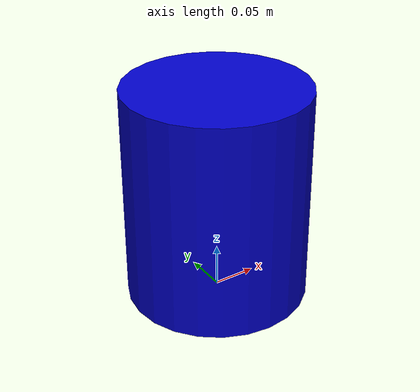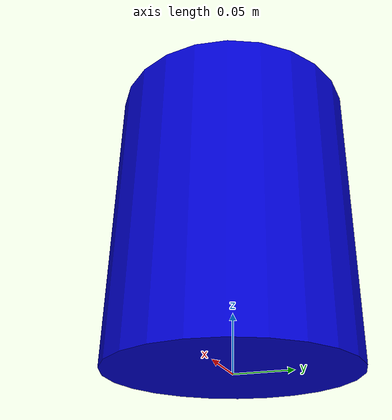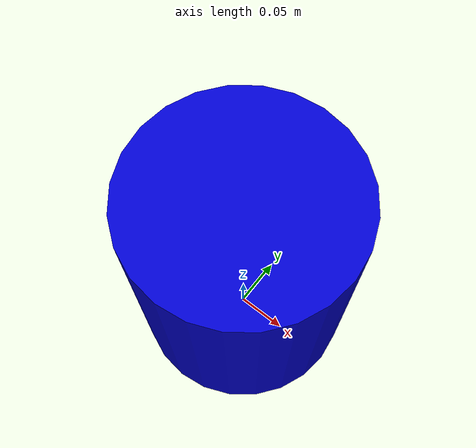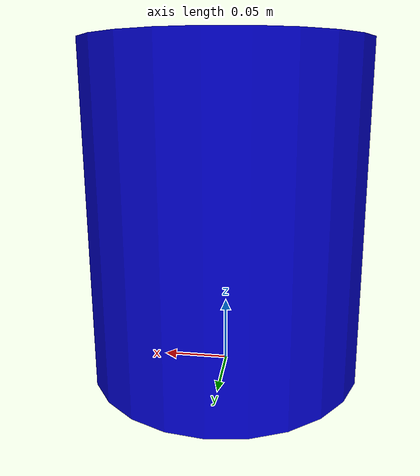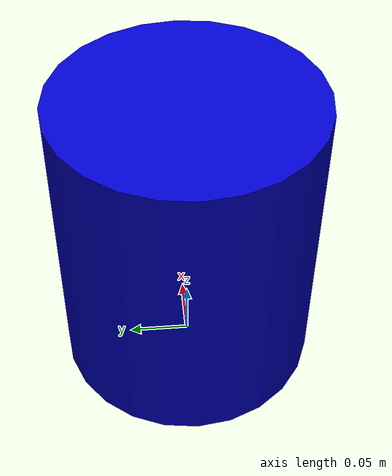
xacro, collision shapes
<?xml version="1.0"?>
<robot name="my_robot" xmlns:xacro="http://www.ros.org/wiki/xacro">

  <!-- Materials -->
  <material name="blue">
    <color rgba="0.0 0.0 0.8 1.0"/>
  </material>

  <material name="black">
    <color rgba="0.0 0.0 0.0 1.0"/>
  </material>

  <material name="gray">
    <color rgba="0.7 0.7 0.7 1.0"/>
  </material>

  <xacro:property name="base_radius" value="0.105" />
  <xacro:property name="base_length" value="0.25" />
  <xacro:property name="base_mass" value="0.3" />
  <xacro:property name="wheel_radius" value="0.02" />
  <xacro:property name="wheel_length" value="0.01" />
  <xacro:property name="wheel_mass" value="0.01" />
  <xacro:property name="caster_radius" value="0.02" />
  <xacro:property name="caster_mass" value="0.01" />
  <xacro:property name="base_z_offset" value="0.02" />

  <link name="base_link">
    <visual>
      <origin xyz="0 0 ${base_z_offset}" rpy="0 0 0"/>
      <geometry>
        <mesh filename="package://robot_gazebo/meshes/body.stl"/>
      </geometry>
      <material name="blue"/>
    </visual>
    <collision>
      <origin xyz="0 0 ${base_length/2}" rpy="0 0 0"/>
      <geometry>
        <cylinder length="${base_length}" radius="${base_radius}"/>
      </geometry>
    </collision>
    <inertial>
      <mass value="${base_mass}"/>
      <inertia ixx="10.0" ixy="0.0" ixz="0.0" iyy="10.0" iyz="0.0" izz="10.0"/>
    </inertial>
  </link>

  <xacro:macro name="wheel" params="prefix reflect turn_angle">
    <link name="${prefix}_wheel">
      <visual>
        <geometry>
          <mesh filename="package://robot_gazebo/meshes/wheel.stl"/>
        </geometry>
        <material name="black"/>
      </visual>
      <collision>
        <origin xyz="0.0 0.0 0.0" rpy="${reflect * -1.57} 0 0"/>
        <geometry>
          <cylinder length="${wheel_length}" radius="${wheel_radius}"/>
        </geometry>
      </collision>
      <inertial>
        <mass value="${wheel_mass}"/>
        <inertia ixx="0.1" ixy="0.0" ixz="0.0" iyy="0.1" iyz="0.0" izz="0.1"/>
      </inertial>
    </link>

    <joint name="${prefix}_wheel_joint" type="continuous">
      <parent link="base_link"/>
      <child link="${prefix}_wheel"/>
      <origin xyz="-0.02 ${reflect * 0.06} ${base_z_offset}" rpy="${turn_angle} 0 0"/>
      <axis xyz="0 1 0"/>
      <dynamics damping="0.1" friction="0.0"/>
    </joint>
  </xacro:macro>

  <xacro:wheel prefix="left" reflect="1" turn_angle="0"/>
  <xacro:wheel prefix="right" reflect="-1" turn_angle="3.1415"/>

  <link name="front_caster">
    <visual>
      <geometry>
        <mesh filename="package://robot_gazebo/meshes/ball.stl"/>
      </geometry>
      <material name="gray"/>
    </visual>
    <collision>
      <origin xyz="0.0 0.0 0.0" rpy="0 0 0"/>
      <geometry>
        <sphere radius="${caster_radius}"/>
      </geometry>
    </collision>
    <inertial>
      <mass value="${caster_mass}"/>
      <inertia ixx="0.01" ixy="0.0" ixz="0.0" iyy="0.01" iyz="0.0" izz="0.01"/>
    </inertial>
  </link>

  <joint name="front_caster_joint" type="fixed">
    <parent link="base_link"/>
    <child link="front_caster"/>
    <origin xyz="0.03 0.0 ${base_z_offset}" rpy="0 0 0"/>
  </joint>

</robot>
